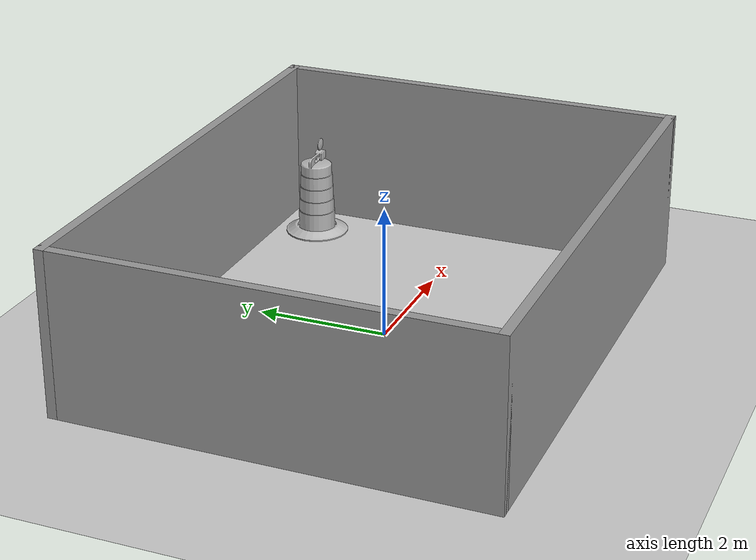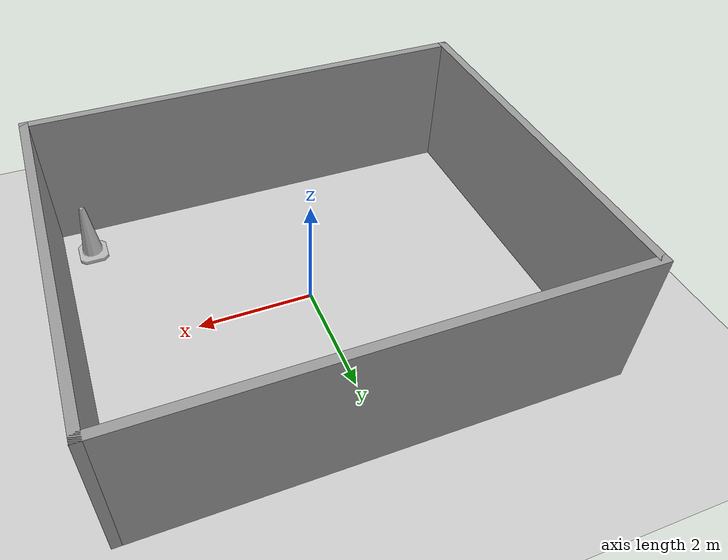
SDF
<sdf version="1.7">
 <world name="default">
  <light name="sun" type="directional">
   <pose>0 0 10 0 -0 0</pose>
   <diffuse>0.8 0.8 0.8 1</diffuse>
   <specular>0.2 0.2 0.2 1</specular>
   <attenuation>
    <range>1000</range>
    <constant>0.9</constant>
    <linear>0.01</linear>
    <quadratic>0.001</quadratic>
   </attenuation>
   <direction>-0.5 0.1 -0.9</direction>
   <spot><inner_angle>0</inner_angle><outer_angle>0</outer_angle><falloff>0</falloff></spot>
  </light>
  <model name="ground_plane">
   <static>1</static>
   <link name="link">
    <collision name="collision">
     <geometry><plane><normal>0 0 1</normal><size>100 100</size></plane></geometry>
     <surface>
      <contact><collide_bitmask>65535</collide_bitmask></contact>
      <friction><ode><mu>100</mu><mu2>50</mu2></ode></friction>
     </surface>
    </collision>
    <visual name="visual">
     <cast_shadows>0</cast_shadows>
     <geometry><plane><normal>0 0 1</normal><size>100 100</size></plane></geometry>
     <material>
      <script><uri>file://media/materials/scripts/gazebo.material</uri><name>Gazebo/Grey</name></script>
     </material>
    </visual>
   </link>
  </model>
  <gravity>0 0 -9.8</gravity>
  <magnetic_field>6e-06 2.3e-05 -4.2e-05</magnetic_field>
  <atmosphere type="adiabatic"/>
  <physics type="ode">
   <max_step_size>0.001</max_step_size>
   <real_time_factor>1</real_time_factor>
   <real_time_update_rate>1000</real_time_update_rate>
  </physics>
  <scene><ambient>0.4 0.4 0.4 1</ambient><background>0.7 0.7 0.7 1</background><shadows>1</shadows></scene>
  <spherical_coordinates>
   <surface_model>EARTH_WGS84</surface_model>
   <latitude_deg>0</latitude_deg>
   <longitude_deg>0</longitude_deg>
   <elevation>0</elevation>
   <heading_deg>0</heading_deg>
  </spherical_coordinates>
  <model name="test_world2">
   <pose>0.011717 0.03662 0 0 -0 0</pose>
   <link name="Wall_2">
    <collision name="Wall_2_Collision">
     <geometry><box><size>6.5 0.15 2.5</size></box></geometry>
     <pose>0 0 1.25 0 -0 0</pose>
    </collision>
    <visual name="Wall_2_Visual">
     <pose>0 0 1.25 0 -0 0</pose>
     <geometry><box><size>6.5 0.15 2.5</size></box></geometry>
     <material>
      <script><uri>file://media/materials/scripts/gazebo.material</uri><name>Gazebo/Grey</name></script>
      <ambient>1 1 1 1</ambient>
     </material>
     <meta><layer>0</layer></meta>
    </visual>
    <pose>3.925 0 0 0 -0 1.5708</pose>
   </link>
   <link name="Wall_3">
    <collision name="Wall_3_Collision">
     <geometry><box><size>8 0.15 2.5</size></box></geometry>
     <pose>0 0 1.25 0 -0 0</pose>
    </collision>
    <visual name="Wall_3_Visual">
     <pose>0 0 1.25 0 -0 0</pose>
     <geometry><box><size>8 0.15 2.5</size></box></geometry>
     <material>
      <script><uri>file://media/materials/scripts/gazebo.material</uri><name>Gazebo/Grey</name></script>
      <ambient>1 1 1 1</ambient>
     </material>
     <meta><layer>0</layer></meta>
    </visual>
    <pose>-0 3.175 0 0 -0 3.14159</pose>
   </link>
   <link name="Wall_4">
    <collision name="Wall_4_Collision">
     <geometry><box><size>6.5 0.15 2.5</size></box></geometry>
     <pose>0 0 1.25 0 -0 0</pose>
    </collision>
    <visual name="Wall_4_Visual">
     <pose>0 0 1.25 0 -0 0</pose>
     <geometry><box><size>6.5 0.15 2.5</size></box></geometry>
     <material>
      <script><uri>file://media/materials/scripts/gazebo.material</uri><name>Gazebo/Grey</name></script>
      <ambient>1 1 1 1</ambient>
     </material>
     <meta><layer>0</layer></meta>
    </visual>
    <pose>-3.925 0 0 0 -0 -1.5708</pose>
   </link>
   <link name="Wall_5">
    <collision name="Wall_5_Collision">
     <geometry><box><size>8 0.15 2.5</size></box></geometry>
     <pose>0 0 1.25 0 -0 0</pose>
    </collision>
    <visual name="Wall_5_Visual">
     <pose>0 0 1.25 0 -0 0</pose>
     <geometry><box><size>8 0.15 2.5</size></box></geometry>
     <material>
      <script><uri>file://media/materials/scripts/gazebo.material</uri><name>Gazebo/Grey</name></script>
      <ambient>1 1 1 1</ambient>
     </material>
     <meta><layer>0</layer></meta>
    </visual>
    <pose>-0 -3.175 0 0 -0 0</pose>
   </link>
   <static>1</static>
  </model>
  <model name="fire_hydrant">
   <static>1</static>
   <link name="link">
    <collision name="collision">
     <geometry><mesh><uri>model://fire_hydrant/meshes/fire_hydrant.dae</uri></mesh></geometry>
    </collision>
    <visual name="visual">
     <geometry><mesh><uri>model://fire_hydrant/meshes/fire_hydrant.dae</uri></mesh></geometry>
    </visual>
   </link>
   <pose>-3.33603 2.65153 0 0 -0 0</pose>
  </model>
  <model name="Construction Cone">
   <link name="link">
    <collision name="collision">
     <geometry>
      <mesh><scale>10 10 10</scale><uri>model://construction_cone/meshes/construction_cone.dae</uri></mesh>
     </geometry>
    </collision>
    <visual name="visual">
     <geometry>
      <mesh><scale>10 10 10</scale><uri>model://construction_cone/meshes/construction_cone.dae</uri></mesh>
     </geometry>
    </visual>
    <inertial>
     <inertia><ixx>1</ixx><ixy>0</ixy><ixz>0</ixz><iyy>1</iyy><iyz>0</iyz><izz>1</izz></inertia>
     <mass>1</mass>
    </inertial>
   </link>
   <pose>3.37821 -2.40404 -0 0 -0 0</pose>
  </model>
  <model name="Construction Barrel">
   <link name="link">
    <inertial>
     <pose>0 0 0.4 0 -0 0</pose>
     <mass>500</mass>
     <inertia><ixx>51.2096</ixx><iyy>51.2096</iyy><izz>25</izz><ixy>0</ixy><ixz>0</ixz><iyz>0</iyz></inertia>
    </inertial>
    <collision name="collision">
     <geometry><mesh><uri>model://construction_barrel/meshes/construction_barrel.dae</uri></mesh></geometry>
    </collision>
    <visual name="visual">
     <geometry><mesh><uri>model://construction_barrel/meshes/construction_barrel.dae</uri></mesh></geometry>
    </visual>
   </link>
   <pose>3.14615 2.48614 -1e-06 3e-06 -2e-06 -2e-06</pose>
  </model>
 </world>
</sdf>
